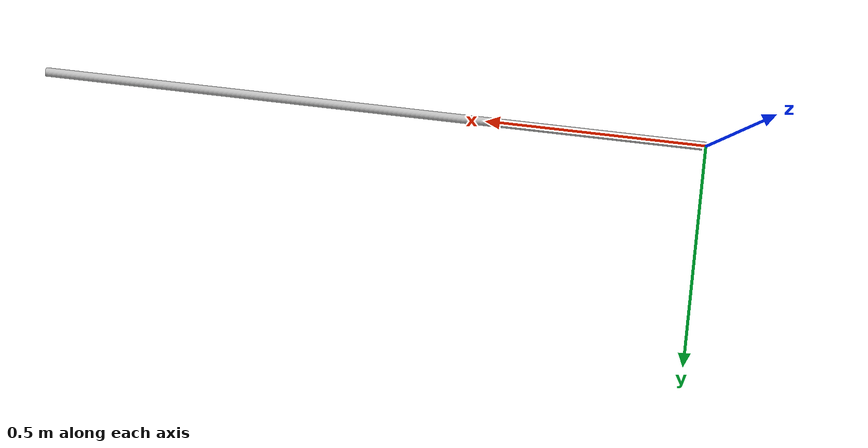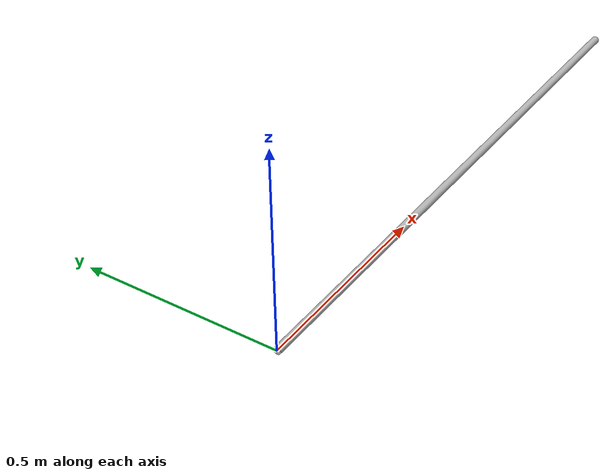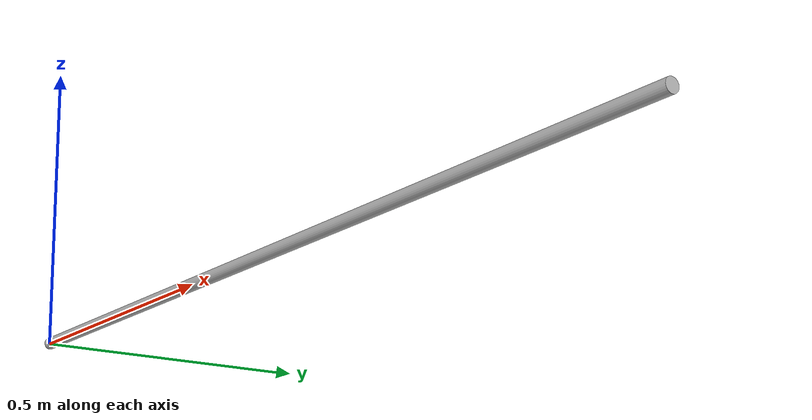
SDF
<sdf version='1.10'>
  <model name='tether'>
    <link name='element_1'>
      <inertial>
        <pose>0.75 0 0 0 1.5707963267948966 0</pose>
        <mass>0.01</mass>
        <inertia>
          <ixx>0.018752499999999998</ixx>
          <ixy>0</ixy>
          <ixz>0</ixz>
          <iyy>0.018752499999999998</iyy>
          <iyz>0</iyz>
          <izz>5.0000000000000004e-06</izz>
        </inertia>
      </inertial>
      <collision name='element_1_collision'>
        <pose>0.75 0 0 0 1.5707963267948966 0</pose>
        <geometry>
          <cylinder>
            <length>0.0001</length>
            <radius>0.0001</radius>
          </cylinder>
        </geometry>
      </collision>
      <visual name='element_1_visual'>
        <pose>0.75 0 0 0 1.5707963267948966 0</pose>
        <geometry>
          <cylinder>
            <length>1.5</length>
            <radius>0.01</radius>
          </cylinder>
        </geometry>
      </visual>
    </link>
  </model>
</sdf>
